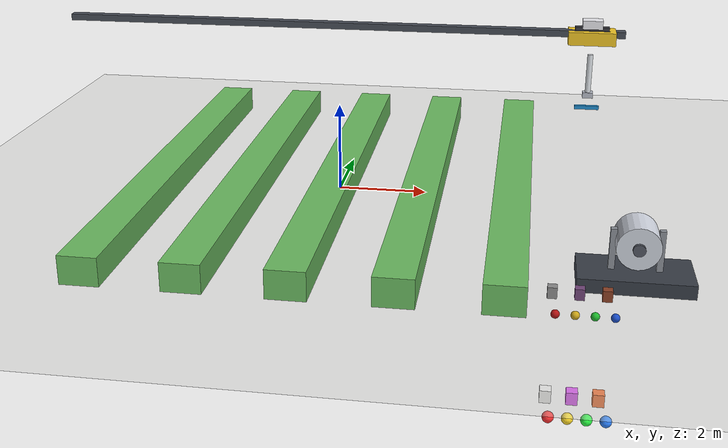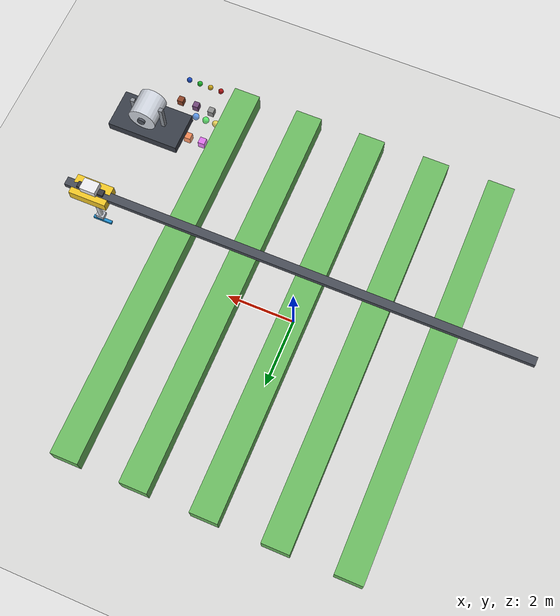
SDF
<?xml version="1.0"?>
<sdf version="1.9">
  <world name="atomizer_greenhouse">
    <gravity>0 0 -9.8</gravity>

    <scene>
      <ambient>0.82 0.84 0.86 1</ambient>
      <background>0.96 0.97 0.98 1</background>
      <shadows>false</shadows>
    </scene>

    <physics type="ode">
      <max_step_size>0.005</max_step_size>
      <real_time_factor>1.0</real_time_factor>
      <real_time_update_rate>200</real_time_update_rate>
    </physics>

    <light name="sun_light" type="directional">
      <cast_shadows>false</cast_shadows>
      <pose>0 0 20 0 0 0</pose>
      <diffuse>0.95 0.95 0.95 1</diffuse>
      <specular>0.2 0.2 0.2 1</specular>
      <attenuation>
        <range>1000</range>
        <constant>0.9</constant>
        <linear>0.01</linear>
        <quadratic>0.001</quadratic>
      </attenuation>
      <direction>-0.25 0.15 -0.95</direction>
    </light>

    <model name="ground_plane_model">
      <static>true</static>
      <link name="ground_link">
        <collision name="ground_collision">
          <geometry>
            <plane>
              <normal>0 0 1</normal>
              <size>40 40</size>
            </plane>
          </geometry>
        </collision>
        <visual name="ground_visual">
          <geometry>
            <plane>
              <normal>0 0 1</normal>
              <size>40 40</size>
            </plane>
          </geometry>
          <material>
            <ambient>0.82 0.82 0.8 1</ambient>
            <diffuse>0.82 0.82 0.8 1</diffuse>
          </material>
        </visual>
      </link>
    </model>

    <model name="lineo_1">
      <static>true</static>
      <pose>-4.0 0 0.3 0 0 0</pose>
      <link name="link">
        <collision name="collision">
          <geometry><box><size>0.8 12.0 0.6</size></box></geometry>
        </collision>
        <visual name="visual">
          <geometry><box><size>0.8 12.0 0.6</size></box></geometry>
          <material>
            <ambient>0.42 0.73 0.38 1</ambient>
            <diffuse>0.42 0.73 0.38 1</diffuse>
          </material>
        </visual>
      </link>
    </model>

    <model name="lineo_2">
      <static>true</static>
      <pose>-2.0 0 0.3 0 0 0</pose>
      <link name="link">
        <collision name="collision">
          <geometry><box><size>0.8 12.0 0.6</size></box></geometry>
        </collision>
        <visual name="visual">
          <geometry><box><size>0.8 12.0 0.6</size></box></geometry>
          <material>
            <ambient>0.42 0.73 0.38 1</ambient>
            <diffuse>0.42 0.73 0.38 1</diffuse>
          </material>
        </visual>
      </link>
    </model>

    <model name="lineo_3">
      <static>true</static>
      <pose>0 0 0.3 0 0 0</pose>
      <link name="link">
        <collision name="collision">
          <geometry><box><size>0.8 12.0 0.6</size></box></geometry>
        </collision>
        <visual name="visual">
          <geometry><box><size>0.8 12.0 0.6</size></box></geometry>
          <material>
            <ambient>0.42 0.73 0.38 1</ambient>
            <diffuse>0.42 0.73 0.38 1</diffuse>
          </material>
        </visual>
      </link>
    </model>

    <model name="lineo_4">
      <static>true</static>
      <pose>2.0 0 0.3 0 0 0</pose>
      <link name="link">
        <collision name="collision">
          <geometry><box><size>0.8 12.0 0.6</size></box></geometry>
        </collision>
        <visual name="visual">
          <geometry><box><size>0.8 12.0 0.6</size></box></geometry>
          <material>
            <ambient>0.42 0.73 0.38 1</ambient>
            <diffuse>0.42 0.73 0.38 1</diffuse>
          </material>
        </visual>
      </link>
    </model>

    <model name="lineo_5">
      <static>true</static>
      <pose>4.0 0 0.3 0 0 0</pose>
      <link name="link">
        <collision name="collision">
          <geometry><box><size>0.8 12.0 0.6</size></box></geometry>
        </collision>
        <visual name="visual">
          <geometry><box><size>0.8 12.0 0.6</size></box></geometry>
          <material>
            <ambient>0.42 0.73 0.38 1</ambient>
            <diffuse>0.42 0.73 0.38 1</diffuse>
          </material>
        </visual>
      </link>
    </model>

    <model name="overhead_guide_structure">
      <static>true</static>
      <pose>0 0 0 0 0 0</pose>
      <link name="link">
        <visual name="guide_beam">
          <pose>0 0 3.85 0 0 0</pose>
          <geometry><box><size>12.4 0.22 0.14</size></box></geometry>
          <material><ambient>0.28 0.3 0.34 1</ambient><diffuse>0.28 0.3 0.34 1</diffuse></material>
        </visual>
      </link>
    </model>

    <model name="atomizer_robot">
      <static>true</static>
      <pose>5.5 0 3.78 0 0 0</pose>
      <link name="body_link">
        <visual name="carriage">
          <geometry><box><size>1.0 0.55 0.28</size></box></geometry>
          <material><ambient>0.95 0.78 0.15 1</ambient><diffuse>0.95 0.78 0.15 1</diffuse></material>
        </visual>
        <visual name="top_module">
          <pose>0 0 0.28 0 0 0</pose>
          <geometry><box><size>0.42 0.32 0.18</size></box></geometry>
          <material><ambient>0.92 0.92 0.94 1</ambient><diffuse>0.92 0.92 0.94 1</diffuse></material>
        </visual>
        <visual name="guide_axle">
          <pose>0 0 0.18 0 0 0</pose>
          <geometry><box><size>0.72 0.16 0.07</size></box></geometry>
          <material><ambient>0.22 0.22 0.24 1</ambient><diffuse>0.22 0.22 0.24 1</diffuse></material>
        </visual>
      </link>
    </model>

    <model name="atomizer_t_tube">
      <static>true</static>
      <pose>5.5 0 2.55 0 0 0</pose>
      <link name="tube_link">
        <visual name="vertical_tube">
          <pose>0 0 0.42 0 0 0</pose>
          <geometry><cylinder><radius>0.06</radius><length>0.84</length></cylinder></geometry>
          <material><ambient>0.86 0.88 0.9 1</ambient><diffuse>0.86 0.88 0.9 1</diffuse></material>
        </visual>
        <visual name="head_mount">
          <pose>0 0 -0.05 0 0 0</pose>
          <geometry><box><size>0.22 0.18 0.12</size></box></geometry>
          <material><ambient>0.72 0.74 0.78 1</ambient><diffuse>0.72 0.74 0.78 1</diffuse></material>
        </visual>
        <visual name="t_bar">
          <pose>0 0 -0.34 0 0 0</pose>
          <geometry><box><size>0.52 0.08 0.08</size></box></geometry>
          <material><ambient>0.12 0.56 0.82 1</ambient><diffuse>0.12 0.56 0.82 1</diffuse></material>
        </visual>
      </link>
    </model>

    <model name="ground_reel">
      <static>true</static>
      <pose>6.4 -4.2 0 0 0 0</pose>
      <link name="link">
        <visual name="base">
          <pose>0 0 0.14 0 0 0</pose>
          <geometry><box><size>2.2 1.2 0.28</size></box></geometry>
          <material><ambient>0.22 0.24 0.28 1</ambient><diffuse>0.22 0.24 0.28 1</diffuse></material>
        </visual>
        <visual name="support_left">
          <pose>-0.45 0 0.62 0 0 0</pose>
          <geometry><box><size>0.12 0.12 0.96</size></box></geometry>
          <material><ambient>0.55 0.57 0.6 1</ambient><diffuse>0.55 0.57 0.6 1</diffuse></material>
        </visual>
        <visual name="support_right">
          <pose>0.45 0 0.62 0 0 0</pose>
          <geometry><box><size>0.12 0.12 0.96</size></box></geometry>
          <material><ambient>0.55 0.57 0.6 1</ambient><diffuse>0.55 0.57 0.6 1</diffuse></material>
        </visual>
        <visual name="reel">
          <pose>0 0 0.86 1.5708 0 0</pose>
          <geometry><cylinder><radius>0.42</radius><length>0.82</length></cylinder></geometry>
          <material><ambient>0.82 0.84 0.88 1</ambient><diffuse>0.82 0.84 0.88 1</diffuse></material>
        </visual>
        <visual name="reel_core">
          <pose>0 0 0.86 1.5708 0 0</pose>
          <geometry><cylinder><radius>0.12</radius><length>0.96</length></cylinder></geometry>
          <material><ambient>0.32 0.34 0.38 1</ambient><diffuse>0.32 0.34 0.38 1</diffuse></material>
        </visual>
      </link>
    </model>

    <model name="status_led_red">
      <static>true</static>
      <pose>4.9 -6.0 0.12 0 0 0</pose>
      <link name="link">
        <visual name="visual">
          <geometry><sphere><radius>0.08</radius></sphere></geometry>
          <material>
            <ambient>0.5 0.06 0.06 1</ambient>
            <diffuse>0.7 0.08 0.08 1</diffuse>
            <emissive>0.2 0.02 0.02 1</emissive>
          </material>
        </visual>
      </link>
    </model>

    <model name="status_led_red_active">
      <static>true</static>
      <pose>4.9 -6.0 -2.0 0 0 0</pose>
      <link name="link">
        <visual name="visual">
          <geometry><sphere><radius>0.11</radius></sphere></geometry>
          <material>
            <ambient>0.85 0.12 0.12 1</ambient>
            <diffuse>1.0 0.2 0.2 1</diffuse>
            <emissive>0.95 0.18 0.18 1</emissive>
          </material>
        </visual>
      </link>
    </model>

    <model name="status_led_yellow">
      <static>true</static>
      <pose>5.25 -6.0 0.12 0 0 0</pose>
      <link name="link">
        <visual name="visual">
          <geometry><sphere><radius>0.08</radius></sphere></geometry>
          <material>
            <ambient>0.55 0.45 0.08 1</ambient>
            <diffuse>0.8 0.65 0.1 1</diffuse>
            <emissive>0.22 0.18 0.03 1</emissive>
          </material>
        </visual>
      </link>
    </model>

    <model name="status_led_yellow_active">
      <static>true</static>
      <pose>5.25 -6.0 -2.0 0 0 0</pose>
      <link name="link">
        <visual name="visual">
          <geometry><sphere><radius>0.11</radius></sphere></geometry>
          <material>
            <ambient>0.86 0.74 0.12 1</ambient>
            <diffuse>1.0 0.86 0.16 1</diffuse>
            <emissive>0.98 0.84 0.18 1</emissive>
          </material>
        </visual>
      </link>
    </model>

    <model name="status_led_green">
      <static>true</static>
      <pose>5.6 -6.0 0.12 0 0 0</pose>
      <link name="link">
        <visual name="visual">
          <geometry><sphere><radius>0.08</radius></sphere></geometry>
          <material>
            <ambient>0.08 0.45 0.12 1</ambient>
            <diffuse>0.12 0.72 0.18 1</diffuse>
            <emissive>0.03 0.2 0.05 1</emissive>
          </material>
        </visual>
      </link>
    </model>

    <model name="status_led_green_active">
      <static>true</static>
      <pose>5.6 -6.0 -2.0 0 0 0</pose>
      <link name="link">
        <visual name="visual">
          <geometry><sphere><radius>0.11</radius></sphere></geometry>
          <material>
            <ambient>0.14 0.72 0.22 1</ambient>
            <diffuse>0.18 1.0 0.28 1</diffuse>
            <emissive>0.16 0.95 0.24 1</emissive>
          </material>
        </visual>
      </link>
    </model>

    <model name="status_led_blue">
      <static>true</static>
      <pose>5.95 -6.0 0.12 0 0 0</pose>
      <link name="link">
        <visual name="visual">
          <geometry><sphere><radius>0.08</radius></sphere></geometry>
          <material>
            <ambient>0.08 0.2 0.5 1</ambient>
            <diffuse>0.1 0.3 0.78 1</diffuse>
            <emissive>0.03 0.08 0.22 1</emissive>
          </material>
        </visual>
      </link>
    </model>

    <model name="status_led_blue_active">
      <static>true</static>
      <pose>5.95 -6.0 -2.0 0 0 0</pose>
      <link name="link">
        <visual name="visual">
          <geometry><sphere><radius>0.11</radius></sphere></geometry>
          <material>
            <ambient>0.14 0.35 0.92 1</ambient>
            <diffuse>0.18 0.52 1.0 1</diffuse>
            <emissive>0.16 0.42 0.98 1</emissive>
          </material>
        </visual>
      </link>
    </model>

    <model name="indicator_ready_base">
      <static>true</static>
      <pose>4.85 -5.2 0.18 0 0 0</pose>
      <link name="link">
        <visual name="visual">
          <geometry><box><size>0.18 0.18 0.22</size></box></geometry>
          <material>
            <ambient>0.45 0.45 0.45 1</ambient>
            <diffuse>0.55 0.55 0.55 1</diffuse>
          </material>
        </visual>
      </link>
    </model>

    <model name="indicator_ready_active">
      <static>true</static>
      <pose>4.85 -5.2 -2.0 0 0 0</pose>
      <link name="link">
        <visual name="visual">
          <geometry><box><size>0.22 0.22 0.26</size></box></geometry>
          <material>
            <ambient>0.92 0.92 0.92 1</ambient>
            <diffuse>1.0 1.0 1.0 1</diffuse>
            <emissive>0.95 0.95 0.95 1</emissive>
          </material>
        </visual>
      </link>
    </model>

    <model name="indicator_degraded_base">
      <static>true</static>
      <pose>5.35 -5.2 0.18 0 0 0</pose>
      <link name="link">
        <visual name="visual">
          <geometry><box><size>0.18 0.18 0.22</size></box></geometry>
          <material>
            <ambient>0.35 0.22 0.38 1</ambient>
            <diffuse>0.45 0.28 0.48 1</diffuse>
          </material>
        </visual>
      </link>
    </model>

    <model name="indicator_degraded_active">
      <static>true</static>
      <pose>5.35 -5.2 -2.0 0 0 0</pose>
      <link name="link">
        <visual name="visual">
          <geometry><box><size>0.22 0.22 0.26</size></box></geometry>
          <material>
            <ambient>0.82 0.22 0.95 1</ambient>
            <diffuse>0.9 0.3 1.0 1</diffuse>
            <emissive>0.82 0.25 0.98 1</emissive>
          </material>
        </visual>
      </link>
    </model>

    <model name="indicator_alert_base">
      <static>true</static>
      <pose>5.85 -5.2 0.18 0 0 0</pose>
      <link name="link">
        <visual name="visual">
          <geometry><box><size>0.18 0.18 0.22</size></box></geometry>
          <material>
            <ambient>0.45 0.2 0.12 1</ambient>
            <diffuse>0.55 0.26 0.15 1</diffuse>
          </material>
        </visual>
      </link>
    </model>

    <model name="indicator_alert_active">
      <static>true</static>
      <pose>5.85 -5.2 -2.0 0 0 0</pose>
      <link name="link">
        <visual name="visual">
          <geometry><box><size>0.22 0.22 0.26</size></box></geometry>
          <material>
            <ambient>0.95 0.35 0.12 1</ambient>
            <diffuse>1.0 0.42 0.15 1</diffuse>
            <emissive>0.98 0.38 0.12 1</emissive>
          </material>
        </visual>
      </link>
    </model>
  </world>
</sdf>
